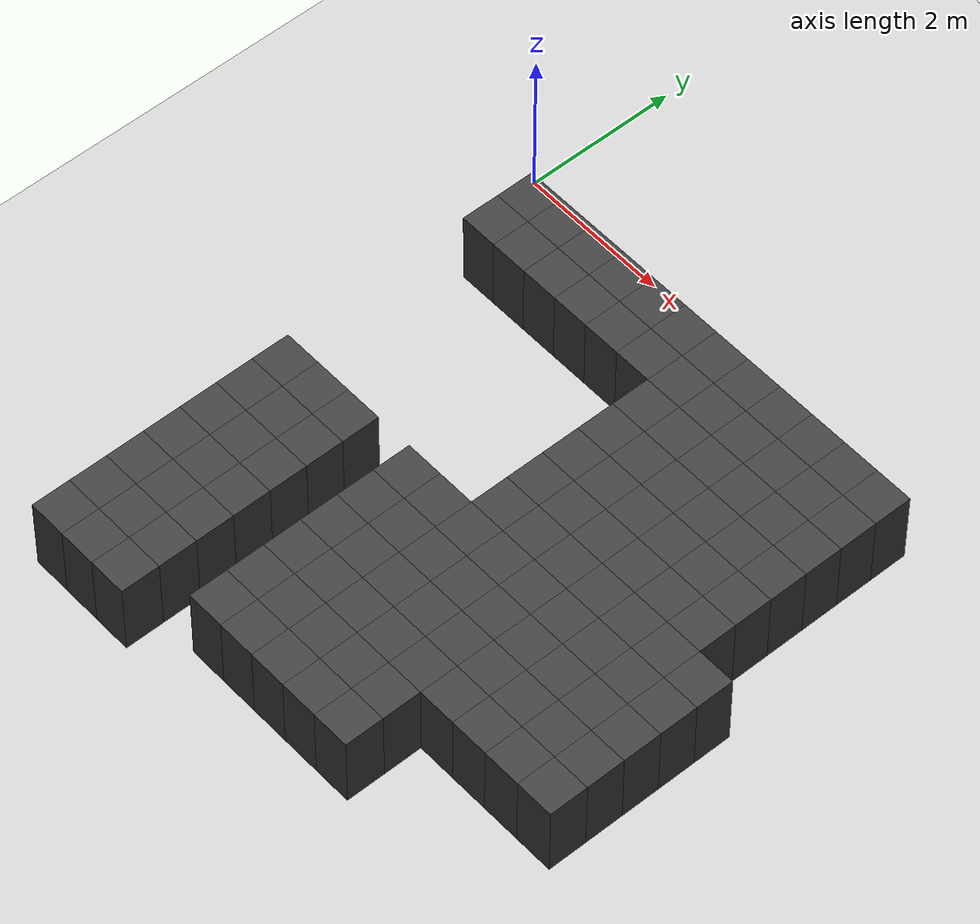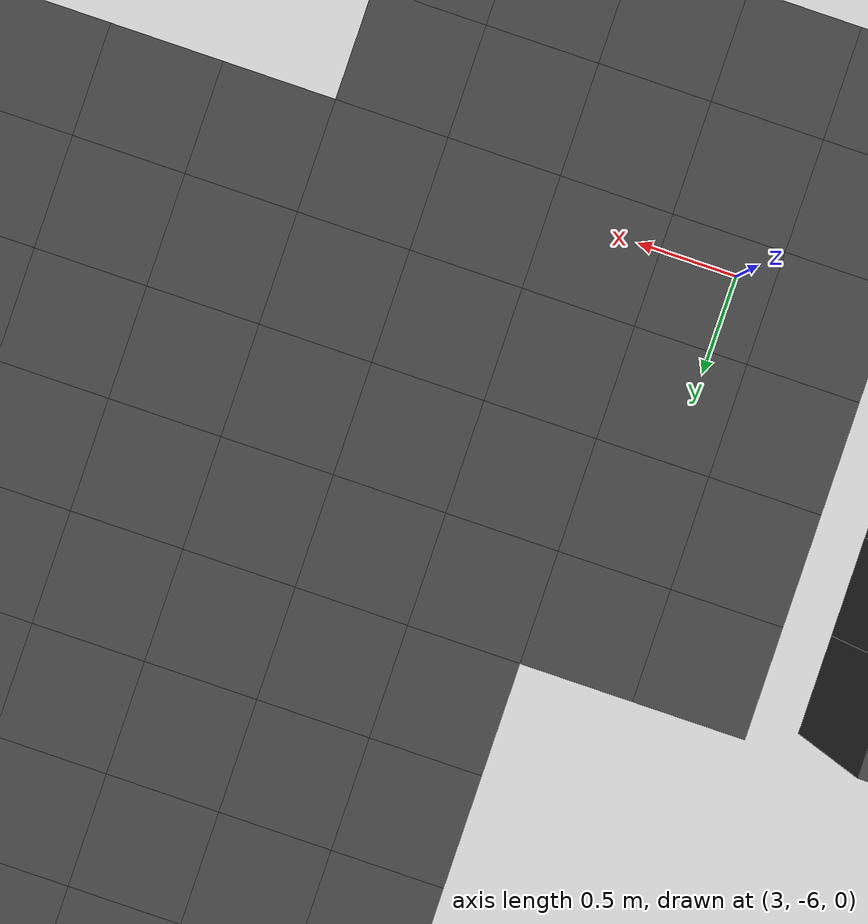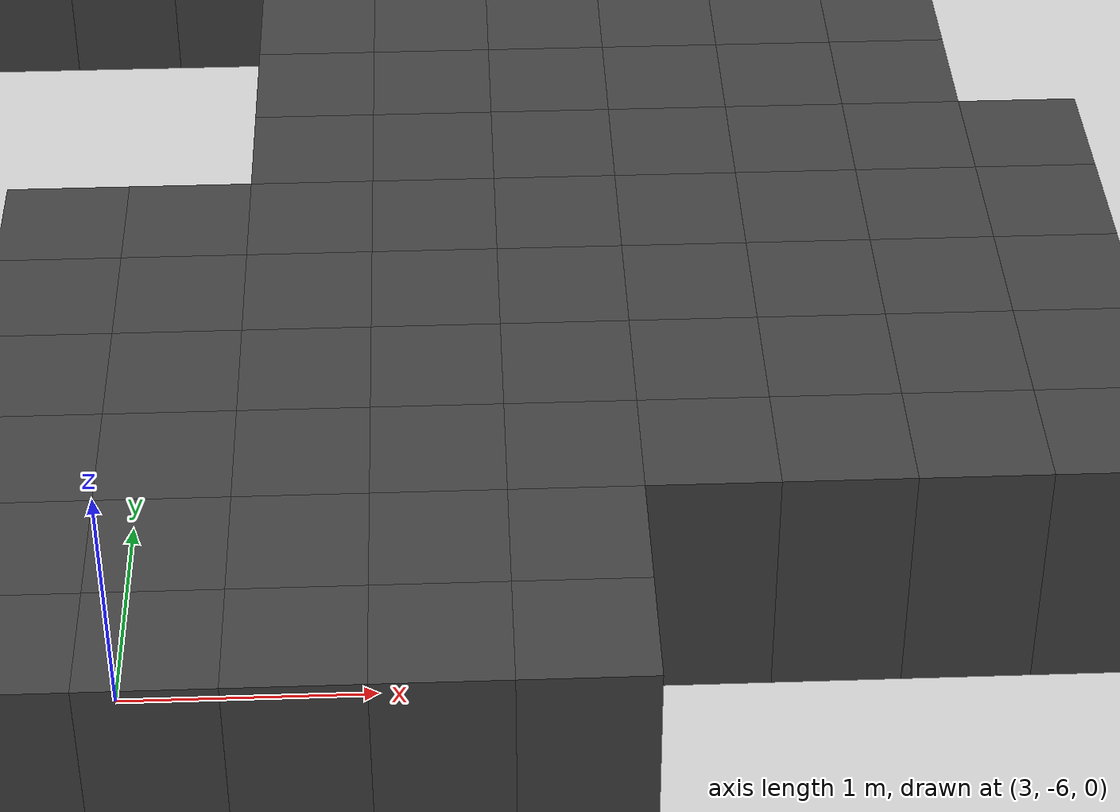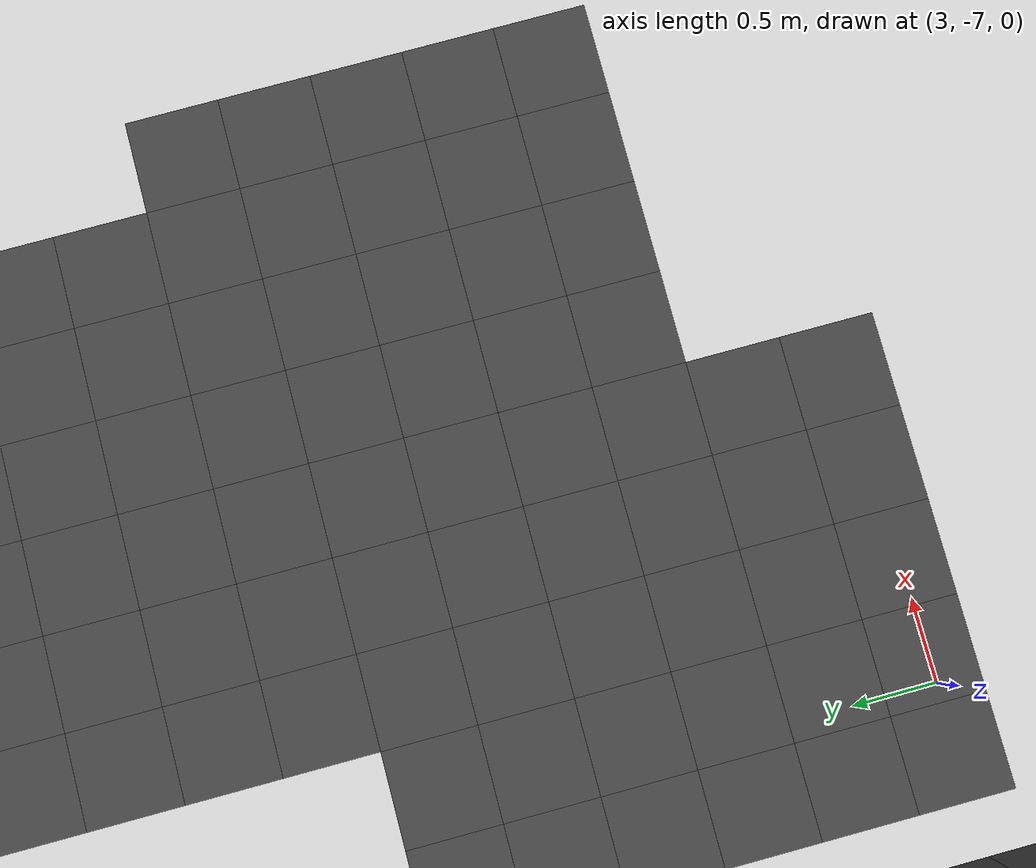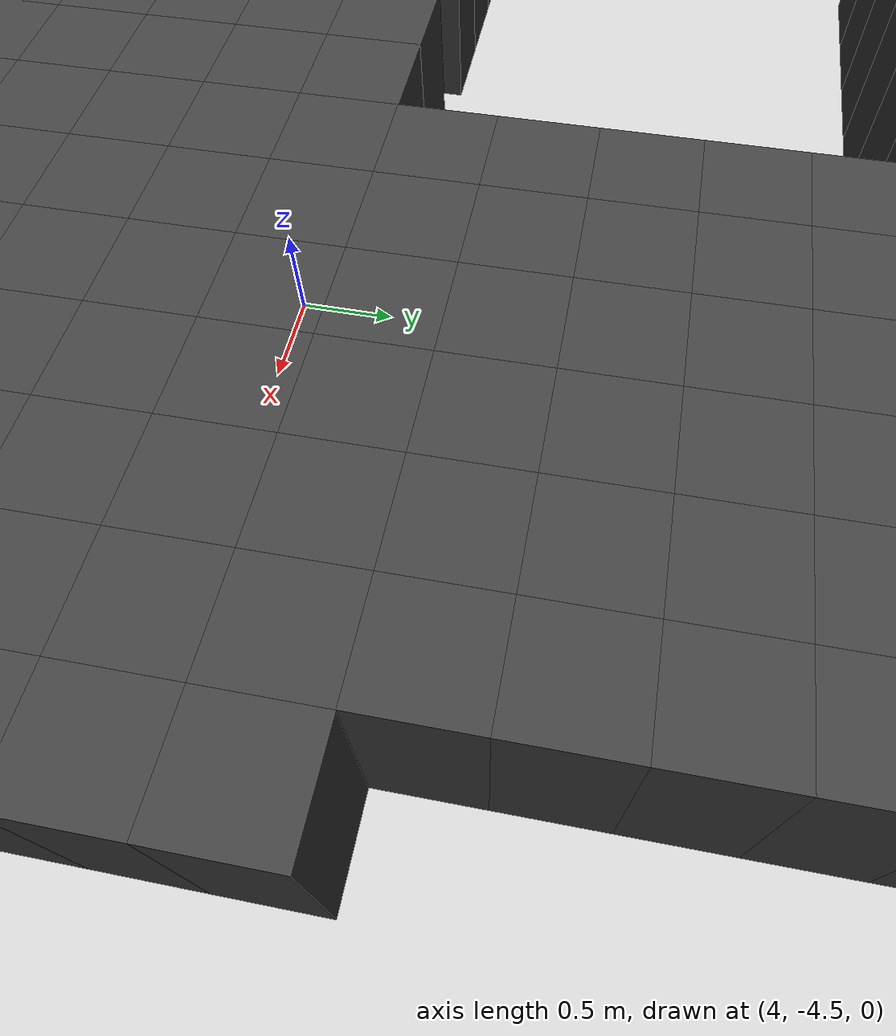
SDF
<sdf version="1.7">
 <world name="map_14510">
  <model name="ground_plane">
   <static>true</static>
   <link name="link">
    <collision name="collision">
     <geometry><plane><normal>0 0 1</normal><size>200 200</size></plane></geometry>
    </collision>
    <visual name="visual">
     <geometry><plane><normal>0 0 1</normal><size>200 200</size></plane></geometry>
     <material><ambient>0.8 0.8 0.8 1</ambient><diffuse>0.8 0.8 0.8 1</diffuse></material>
    </visual>
   </link>
  </model>
  <model name="maze_environment">
   <static>true</static>
   <link name="wall_915">
    <pose>0.750 -0.750 0.500 0 0 0</pose>
    <collision name="col"><geometry><box><size>0.5 0.5 1.0</size></box></geometry></collision>
    <visual name="vis">
     <geometry><box><size>0.5 0.5 1.0</size></box></geometry>
     <material><ambient>0.15 0.15 0.15 1</ambient><diffuse>0.25 0.25 0.25 1</diffuse></material>
    </visual>
   </link>
   <link name="wall_916">
    <pose>1.250 -0.750 0.500 0 0 0</pose>
    <collision name="col"><geometry><box><size>0.5 0.5 1.0</size></box></geometry></collision>
    <visual name="vis">
     <geometry><box><size>0.5 0.5 1.0</size></box></geometry>
     <material><ambient>0.15 0.15 0.15 1</ambient><diffuse>0.25 0.25 0.25 1</diffuse></material>
    </visual>
   </link>
   <link name="wall_917">
    <pose>1.750 -0.750 0.500 0 0 0</pose>
    <collision name="col"><geometry><box><size>0.5 0.5 1.0</size></box></geometry></collision>
    <visual name="vis">
     <geometry><box><size>0.5 0.5 1.0</size></box></geometry>
     <material><ambient>0.15 0.15 0.15 1</ambient><diffuse>0.25 0.25 0.25 1</diffuse></material>
    </visual>
   </link>
   <link name="wall_918">
    <pose>2.250 -0.750 0.500 0 0 0</pose>
    <collision name="col"><geometry><box><size>0.5 0.5 1.0</size></box></geometry></collision>
    <visual name="vis">
     <geometry><box><size>0.5 0.5 1.0</size></box></geometry>
     <material><ambient>0.15 0.15 0.15 1</ambient><diffuse>0.25 0.25 0.25 1</diffuse></material>
    </visual>
   </link>
   <link name="wall_919">
    <pose>2.750 -0.750 0.500 0 0 0</pose>
    <collision name="col"><geometry><box><size>0.5 0.5 1.0</size></box></geometry></collision>
    <visual name="vis">
     <geometry><box><size>0.5 0.5 1.0</size></box></geometry>
     <material><ambient>0.15 0.15 0.15 1</ambient><diffuse>0.25 0.25 0.25 1</diffuse></material>
    </visual>
   </link>
   <link name="wall_920">
    <pose>3.250 -0.750 0.500 0 0 0</pose>
    <collision name="col"><geometry><box><size>0.5 0.5 1.0</size></box></geometry></collision>
    <visual name="vis">
     <geometry><box><size>0.5 0.5 1.0</size></box></geometry>
     <material><ambient>0.15 0.15 0.15 1</ambient><diffuse>0.25 0.25 0.25 1</diffuse></material>
    </visual>
   </link>
   <link name="wall_921">
    <pose>3.750 -0.750 0.500 0 0 0</pose>
    <collision name="col"><geometry><box><size>0.5 0.5 1.0</size></box></geometry></collision>
    <visual name="vis">
     <geometry><box><size>0.5 0.5 1.0</size></box></geometry>
     <material><ambient>0.15 0.15 0.15 1</ambient><diffuse>0.25 0.25 0.25 1</diffuse></material>
    </visual>
   </link>
   <link name="wall_922">
    <pose>4.250 -0.750 0.500 0 0 0</pose>
    <collision name="col"><geometry><box><size>0.5 0.5 1.0</size></box></geometry></collision>
    <visual name="vis">
     <geometry><box><size>0.5 0.5 1.0</size></box></geometry>
     <material><ambient>0.15 0.15 0.15 1</ambient><diffuse>0.25 0.25 0.25 1</diffuse></material>
    </visual>
   </link>
   <link name="wall_923">
    <pose>4.750 -0.750 0.500 0 0 0</pose>
    <collision name="col"><geometry><box><size>0.5 0.5 1.0</size></box></geometry></collision>
    <visual name="vis">
     <geometry><box><size>0.5 0.5 1.0</size></box></geometry>
     <material><ambient>0.15 0.15 0.15 1</ambient><diffuse>0.25 0.25 0.25 1</diffuse></material>
    </visual>
   </link>
   <link name="wall_924">
    <pose>5.250 -0.750 0.500 0 0 0</pose>
    <collision name="col"><geometry><box><size>0.5 0.5 1.0</size></box></geometry></collision>
    <visual name="vis">
     <geometry><box><size>0.5 0.5 1.0</size></box></geometry>
     <material><ambient>0.15 0.15 0.15 1</ambient><diffuse>0.25 0.25 0.25 1</diffuse></material>
    </visual>
   </link>
   <link name="wall_925">
    <pose>5.750 -0.750 0.500 0 0 0</pose>
    <collision name="col"><geometry><box><size>0.5 0.5 1.0</size></box></geometry></collision>
    <visual name="vis">
     <geometry><box><size>0.5 0.5 1.0</size></box></geometry>
     <material><ambient>0.15 0.15 0.15 1</ambient><diffuse>0.25 0.25 0.25 1</diffuse></material>
    </visual>
   </link>
   <link name="wall_926">
    <pose>6.250 -0.750 0.500 0 0 0</pose>
    <collision name="col"><geometry><box><size>0.5 0.5 1.0</size></box></geometry></collision>
    <visual name="vis">
     <geometry><box><size>0.5 0.5 1.0</size></box></geometry>
     <material><ambient>0.15 0.15 0.15 1</ambient><diffuse>0.25 0.25 0.25 1</diffuse></material>
    </visual>
   </link>
   <link name="wall_948">
    <pose>0.750 -1.250 0.500 0 0 0</pose>
    <collision name="col"><geometry><box><size>0.5 0.5 1.0</size></box></geometry></collision>
    <visual name="vis">
     <geometry><box><size>0.5 0.5 1.0</size></box></geometry>
     <material><ambient>0.15 0.15 0.15 1</ambient><diffuse>0.25 0.25 0.25 1</diffuse></material>
    </visual>
   </link>
   <link name="wall_949">
    <pose>1.250 -1.250 0.500 0 0 0</pose>
    <collision name="col"><geometry><box><size>0.5 0.5 1.0</size></box></geometry></collision>
    <visual name="vis">
     <geometry><box><size>0.5 0.5 1.0</size></box></geometry>
     <material><ambient>0.15 0.15 0.15 1</ambient><diffuse>0.25 0.25 0.25 1</diffuse></material>
    </visual>
   </link>
   <link name="wall_950">
    <pose>1.750 -1.250 0.500 0 0 0</pose>
    <collision name="col"><geometry><box><size>0.5 0.5 1.0</size></box></geometry></collision>
    <visual name="vis">
     <geometry><box><size>0.5 0.5 1.0</size></box></geometry>
     <material><ambient>0.15 0.15 0.15 1</ambient><diffuse>0.25 0.25 0.25 1</diffuse></material>
    </visual>
   </link>
   <link name="wall_951">
    <pose>2.250 -1.250 0.500 0 0 0</pose>
    <collision name="col"><geometry><box><size>0.5 0.5 1.0</size></box></geometry></collision>
    <visual name="vis">
     <geometry><box><size>0.5 0.5 1.0</size></box></geometry>
     <material><ambient>0.15 0.15 0.15 1</ambient><diffuse>0.25 0.25 0.25 1</diffuse></material>
    </visual>
   </link>
   <link name="wall_952">
    <pose>2.750 -1.250 0.500 0 0 0</pose>
    <collision name="col"><geometry><box><size>0.5 0.5 1.0</size></box></geometry></collision>
    <visual name="vis">
     <geometry><box><size>0.5 0.5 1.0</size></box></geometry>
     <material><ambient>0.15 0.15 0.15 1</ambient><diffuse>0.25 0.25 0.25 1</diffuse></material>
    </visual>
   </link>
   <link name="wall_953">
    <pose>3.250 -1.250 0.500 0 0 0</pose>
    <collision name="col"><geometry><box><size>0.5 0.5 1.0</size></box></geometry></collision>
    <visual name="vis">
     <geometry><box><size>0.5 0.5 1.0</size></box></geometry>
     <material><ambient>0.15 0.15 0.15 1</ambient><diffuse>0.25 0.25 0.25 1</diffuse></material>
    </visual>
   </link>
   <link name="wall_954">
    <pose>3.750 -1.250 0.500 0 0 0</pose>
    <collision name="col"><geometry><box><size>0.5 0.5 1.0</size></box></geometry></collision>
    <visual name="vis">
     <geometry><box><size>0.5 0.5 1.0</size></box></geometry>
     <material><ambient>0.15 0.15 0.15 1</ambient><diffuse>0.25 0.25 0.25 1</diffuse></material>
    </visual>
   </link>
   <link name="wall_955">
    <pose>4.250 -1.250 0.500 0 0 0</pose>
    <collision name="col"><geometry><box><size>0.5 0.5 1.0</size></box></geometry></collision>
    <visual name="vis">
     <geometry><box><size>0.5 0.5 1.0</size></box></geometry>
     <material><ambient>0.15 0.15 0.15 1</ambient><diffuse>0.25 0.25 0.25 1</diffuse></material>
    </visual>
   </link>
   <link name="wall_956">
    <pose>4.750 -1.250 0.500 0 0 0</pose>
    <collision name="col"><geometry><box><size>0.5 0.5 1.0</size></box></geometry></collision>
    <visual name="vis">
     <geometry><box><size>0.5 0.5 1.0</size></box></geometry>
     <material><ambient>0.15 0.15 0.15 1</ambient><diffuse>0.25 0.25 0.25 1</diffuse></material>
    </visual>
   </link>
   <link name="wall_957">
    <pose>5.250 -1.250 0.500 0 0 0</pose>
    <collision name="col"><geometry><box><size>0.5 0.5 1.0</size></box></geometry></collision>
    <visual name="vis">
     <geometry><box><size>0.5 0.5 1.0</size></box></geometry>
     <material><ambient>0.15 0.15 0.15 1</ambient><diffuse>0.25 0.25 0.25 1</diffuse></material>
    </visual>
   </link>
   <link name="wall_958">
    <pose>5.750 -1.250 0.500 0 0 0</pose>
    <collision name="col"><geometry><box><size>0.5 0.5 1.0</size></box></geometry></collision>
    <visual name="vis">
     <geometry><box><size>0.5 0.5 1.0</size></box></geometry>
     <material><ambient>0.15 0.15 0.15 1</ambient><diffuse>0.25 0.25 0.25 1</diffuse></material>
    </visual>
   </link>
   <link name="wall_959">
    <pose>6.250 -1.250 0.500 0 0 0</pose>
    <collision name="col"><geometry><box><size>0.5 0.5 1.0</size></box></geometry></collision>
    <visual name="vis">
     <geometry><box><size>0.5 0.5 1.0</size></box></geometry>
     <material><ambient>0.15 0.15 0.15 1</ambient><diffuse>0.25 0.25 0.25 1</diffuse></material>
    </visual>
   </link>
   <link name="wall_981">
    <pose>3.750 -1.750 0.500 0 0 0</pose>
    <collision name="col"><geometry><box><size>0.5 0.5 1.0</size></box></geometry></collision>
    <visual name="vis">
     <geometry><box><size>0.5 0.5 1.0</size></box></geometry>
     <material><ambient>0.15 0.15 0.15 1</ambient><diffuse>0.25 0.25 0.25 1</diffuse></material>
    </visual>
   </link>
   <link name="wall_982">
    <pose>4.250 -1.750 0.500 0 0 0</pose>
    <collision name="col"><geometry><box><size>0.5 0.5 1.0</size></box></geometry></collision>
    <visual name="vis">
     <geometry><box><size>0.5 0.5 1.0</size></box></geometry>
     <material><ambient>0.15 0.15 0.15 1</ambient><diffuse>0.25 0.25 0.25 1</diffuse></material>
    </visual>
   </link>
   <link name="wall_983">
    <pose>4.750 -1.750 0.500 0 0 0</pose>
    <collision name="col"><geometry><box><size>0.5 0.5 1.0</size></box></geometry></collision>
    <visual name="vis">
     <geometry><box><size>0.5 0.5 1.0</size></box></geometry>
     <material><ambient>0.15 0.15 0.15 1</ambient><diffuse>0.25 0.25 0.25 1</diffuse></material>
    </visual>
   </link>
   <link name="wall_984">
    <pose>5.250 -1.750 0.500 0 0 0</pose>
    <collision name="col"><geometry><box><size>0.5 0.5 1.0</size></box></geometry></collision>
    <visual name="vis">
     <geometry><box><size>0.5 0.5 1.0</size></box></geometry>
     <material><ambient>0.15 0.15 0.15 1</ambient><diffuse>0.25 0.25 0.25 1</diffuse></material>
    </visual>
   </link>
   <link name="wall_985">
    <pose>5.750 -1.750 0.500 0 0 0</pose>
    <collision name="col"><geometry><box><size>0.5 0.5 1.0</size></box></geometry></collision>
    <visual name="vis">
     <geometry><box><size>0.5 0.5 1.0</size></box></geometry>
     <material><ambient>0.15 0.15 0.15 1</ambient><diffuse>0.25 0.25 0.25 1</diffuse></material>
    </visual>
   </link>
   <link name="wall_986">
    <pose>6.250 -1.750 0.500 0 0 0</pose>
    <collision name="col"><geometry><box><size>0.5 0.5 1.0</size></box></geometry></collision>
    <visual name="vis">
     <geometry><box><size>0.5 0.5 1.0</size></box></geometry>
     <material><ambient>0.15 0.15 0.15 1</ambient><diffuse>0.25 0.25 0.25 1</diffuse></material>
    </visual>
   </link>
   <link name="wall_1008">
    <pose>3.750 -2.250 0.500 0 0 0</pose>
    <collision name="col"><geometry><box><size>0.5 0.5 1.0</size></box></geometry></collision>
    <visual name="vis">
     <geometry><box><size>0.5 0.5 1.0</size></box></geometry>
     <material><ambient>0.15 0.15 0.15 1</ambient><diffuse>0.25 0.25 0.25 1</diffuse></material>
    </visual>
   </link>
   <link name="wall_1009">
    <pose>4.250 -2.250 0.500 0 0 0</pose>
    <collision name="col"><geometry><box><size>0.5 0.5 1.0</size></box></geometry></collision>
    <visual name="vis">
     <geometry><box><size>0.5 0.5 1.0</size></box></geometry>
     <material><ambient>0.15 0.15 0.15 1</ambient><diffuse>0.25 0.25 0.25 1</diffuse></material>
    </visual>
   </link>
   <link name="wall_1010">
    <pose>4.750 -2.250 0.500 0 0 0</pose>
    <collision name="col"><geometry><box><size>0.5 0.5 1.0</size></box></geometry></collision>
    <visual name="vis">
     <geometry><box><size>0.5 0.5 1.0</size></box></geometry>
     <material><ambient>0.15 0.15 0.15 1</ambient><diffuse>0.25 0.25 0.25 1</diffuse></material>
    </visual>
   </link>
   <link name="wall_1011">
    <pose>5.250 -2.250 0.500 0 0 0</pose>
    <collision name="col"><geometry><box><size>0.5 0.5 1.0</size></box></geometry></collision>
    <visual name="vis">
     <geometry><box><size>0.5 0.5 1.0</size></box></geometry>
     <material><ambient>0.15 0.15 0.15 1</ambient><diffuse>0.25 0.25 0.25 1</diffuse></material>
    </visual>
   </link>
   <link name="wall_1012">
    <pose>5.750 -2.250 0.500 0 0 0</pose>
    <collision name="col"><geometry><box><size>0.5 0.5 1.0</size></box></geometry></collision>
    <visual name="vis">
     <geometry><box><size>0.5 0.5 1.0</size></box></geometry>
     <material><ambient>0.15 0.15 0.15 1</ambient><diffuse>0.25 0.25 0.25 1</diffuse></material>
    </visual>
   </link>
   <link name="wall_1013">
    <pose>6.250 -2.250 0.500 0 0 0</pose>
    <collision name="col"><geometry><box><size>0.5 0.5 1.0</size></box></geometry></collision>
    <visual name="vis">
     <geometry><box><size>0.5 0.5 1.0</size></box></geometry>
     <material><ambient>0.15 0.15 0.15 1</ambient><diffuse>0.25 0.25 0.25 1</diffuse></material>
    </visual>
   </link>
   <link name="wall_1036">
    <pose>3.750 -2.750 0.500 0 0 0</pose>
    <collision name="col"><geometry><box><size>0.5 0.5 1.0</size></box></geometry></collision>
    <visual name="vis">
     <geometry><box><size>0.5 0.5 1.0</size></box></geometry>
     <material><ambient>0.15 0.15 0.15 1</ambient><diffuse>0.25 0.25 0.25 1</diffuse></material>
    </visual>
   </link>
   <link name="wall_1037">
    <pose>4.250 -2.750 0.500 0 0 0</pose>
    <collision name="col"><geometry><box><size>0.5 0.5 1.0</size></box></geometry></collision>
    <visual name="vis">
     <geometry><box><size>0.5 0.5 1.0</size></box></geometry>
     <material><ambient>0.15 0.15 0.15 1</ambient><diffuse>0.25 0.25 0.25 1</diffuse></material>
    </visual>
   </link>
   <link name="wall_1038">
    <pose>4.750 -2.750 0.500 0 0 0</pose>
    <collision name="col"><geometry><box><size>0.5 0.5 1.0</size></box></geometry></collision>
    <visual name="vis">
     <geometry><box><size>0.5 0.5 1.0</size></box></geometry>
     <material><ambient>0.15 0.15 0.15 1</ambient><diffuse>0.25 0.25 0.25 1</diffuse></material>
    </visual>
   </link>
   <link name="wall_1039">
    <pose>5.250 -2.750 0.500 0 0 0</pose>
    <collision name="col"><geometry><box><size>0.5 0.5 1.0</size></box></geometry></collision>
    <visual name="vis">
     <geometry><box><size>0.5 0.5 1.0</size></box></geometry>
     <material><ambient>0.15 0.15 0.15 1</ambient><diffuse>0.25 0.25 0.25 1</diffuse></material>
    </visual>
   </link>
   <link name="wall_1040">
    <pose>5.750 -2.750 0.500 0 0 0</pose>
    <collision name="col"><geometry><box><size>0.5 0.5 1.0</size></box></geometry></collision>
    <visual name="vis">
     <geometry><box><size>0.5 0.5 1.0</size></box></geometry>
     <material><ambient>0.15 0.15 0.15 1</ambient><diffuse>0.25 0.25 0.25 1</diffuse></material>
    </visual>
   </link>
   <link name="wall_1041">
    <pose>6.250 -2.750 0.500 0 0 0</pose>
    <collision name="col"><geometry><box><size>0.5 0.5 1.0</size></box></geometry></collision>
    <visual name="vis">
     <geometry><box><size>0.5 0.5 1.0</size></box></geometry>
     <material><ambient>0.15 0.15 0.15 1</ambient><diffuse>0.25 0.25 0.25 1</diffuse></material>
    </visual>
   </link>
   <link name="wall_1072">
    <pose>3.750 -3.250 0.500 0 0 0</pose>
    <collision name="col"><geometry><box><size>0.5 0.5 1.0</size></box></geometry></collision>
    <visual name="vis">
     <geometry><box><size>0.5 0.5 1.0</size></box></geometry>
     <material><ambient>0.15 0.15 0.15 1</ambient><diffuse>0.25 0.25 0.25 1</diffuse></material>
    </visual>
   </link>
   <link name="wall_1073">
    <pose>4.250 -3.250 0.500 0 0 0</pose>
    <collision name="col"><geometry><box><size>0.5 0.5 1.0</size></box></geometry></collision>
    <visual name="vis">
     <geometry><box><size>0.5 0.5 1.0</size></box></geometry>
     <material><ambient>0.15 0.15 0.15 1</ambient><diffuse>0.25 0.25 0.25 1</diffuse></material>
    </visual>
   </link>
   <link name="wall_1074">
    <pose>4.750 -3.250 0.500 0 0 0</pose>
    <collision name="col"><geometry><box><size>0.5 0.5 1.0</size></box></geometry></collision>
    <visual name="vis">
     <geometry><box><size>0.5 0.5 1.0</size></box></geometry>
     <material><ambient>0.15 0.15 0.15 1</ambient><diffuse>0.25 0.25 0.25 1</diffuse></material>
    </visual>
   </link>
   <link name="wall_1075">
    <pose>5.250 -3.250 0.500 0 0 0</pose>
    <collision name="col"><geometry><box><size>0.5 0.5 1.0</size></box></geometry></collision>
    <visual name="vis">
     <geometry><box><size>0.5 0.5 1.0</size></box></geometry>
     <material><ambient>0.15 0.15 0.15 1</ambient><diffuse>0.25 0.25 0.25 1</diffuse></material>
    </visual>
   </link>
   <link name="wall_1076">
    <pose>5.750 -3.250 0.500 0 0 0</pose>
    <collision name="col"><geometry><box><size>0.5 0.5 1.0</size></box></geometry></collision>
    <visual name="vis">
     <geometry><box><size>0.5 0.5 1.0</size></box></geometry>
     <material><ambient>0.15 0.15 0.15 1</ambient><diffuse>0.25 0.25 0.25 1</diffuse></material>
    </visual>
   </link>
   <link name="wall_1077">
    <pose>6.250 -3.250 0.500 0 0 0</pose>
    <collision name="col"><geometry><box><size>0.5 0.5 1.0</size></box></geometry></collision>
    <visual name="vis">
     <geometry><box><size>0.5 0.5 1.0</size></box></geometry>
     <material><ambient>0.15 0.15 0.15 1</ambient><diffuse>0.25 0.25 0.25 1</diffuse></material>
    </visual>
   </link>
   <link name="wall_1108">
    <pose>3.750 -3.750 0.500 0 0 0</pose>
    <collision name="col"><geometry><box><size>0.5 0.5 1.0</size></box></geometry></collision>
    <visual name="vis">
     <geometry><box><size>0.5 0.5 1.0</size></box></geometry>
     <material><ambient>0.15 0.15 0.15 1</ambient><diffuse>0.25 0.25 0.25 1</diffuse></material>
    </visual>
   </link>
   <link name="wall_1109">
    <pose>4.250 -3.750 0.500 0 0 0</pose>
    <collision name="col"><geometry><box><size>0.5 0.5 1.0</size></box></geometry></collision>
    <visual name="vis">
     <geometry><box><size>0.5 0.5 1.0</size></box></geometry>
     <material><ambient>0.15 0.15 0.15 1</ambient><diffuse>0.25 0.25 0.25 1</diffuse></material>
    </visual>
   </link>
   <link name="wall_1110">
    <pose>4.750 -3.750 0.500 0 0 0</pose>
    <collision name="col"><geometry><box><size>0.5 0.5 1.0</size></box></geometry></collision>
    <visual name="vis">
     <geometry><box><size>0.5 0.5 1.0</size></box></geometry>
     <material><ambient>0.15 0.15 0.15 1</ambient><diffuse>0.25 0.25 0.25 1</diffuse></material>
    </visual>
   </link>
   <link name="wall_1111">
    <pose>5.250 -3.750 0.500 0 0 0</pose>
    <collision name="col"><geometry><box><size>0.5 0.5 1.0</size></box></geometry></collision>
    <visual name="vis">
     <geometry><box><size>0.5 0.5 1.0</size></box></geometry>
     <material><ambient>0.15 0.15 0.15 1</ambient><diffuse>0.25 0.25 0.25 1</diffuse></material>
    </visual>
   </link>
   <link name="wall_1112">
    <pose>5.750 -3.750 0.500 0 0 0</pose>
    <collision name="col"><geometry><box><size>0.5 0.5 1.0</size></box></geometry></collision>
    <visual name="vis">
     <geometry><box><size>0.5 0.5 1.0</size></box></geometry>
     <material><ambient>0.15 0.15 0.15 1</ambient><diffuse>0.25 0.25 0.25 1</diffuse></material>
    </visual>
   </link>
   <link name="wall_1113">
    <pose>6.250 -3.750 0.500 0 0 0</pose>
    <collision name="col"><geometry><box><size>0.5 0.5 1.0</size></box></geometry></collision>
    <visual name="vis">
     <geometry><box><size>0.5 0.5 1.0</size></box></geometry>
     <material><ambient>0.15 0.15 0.15 1</ambient><diffuse>0.25 0.25 0.25 1</diffuse></material>
    </visual>
   </link>
   <link name="wall_1114">
    <pose>6.750 -3.750 0.500 0 0 0</pose>
    <collision name="col"><geometry><box><size>0.5 0.5 1.0</size></box></geometry></collision>
    <visual name="vis">
     <geometry><box><size>0.5 0.5 1.0</size></box></geometry>
     <material><ambient>0.15 0.15 0.15 1</ambient><diffuse>0.25 0.25 0.25 1</diffuse></material>
    </visual>
   </link>
   <link name="wall_1144">
    <pose>0.750 -4.250 0.500 0 0 0</pose>
    <collision name="col"><geometry><box><size>0.5 0.5 1.0</size></box></geometry></collision>
    <visual name="vis">
     <geometry><box><size>0.5 0.5 1.0</size></box></geometry>
     <material><ambient>0.15 0.15 0.15 1</ambient><diffuse>0.25 0.25 0.25 1</diffuse></material>
    </visual>
   </link>
   <link name="wall_1145">
    <pose>1.250 -4.250 0.500 0 0 0</pose>
    <collision name="col"><geometry><box><size>0.5 0.5 1.0</size></box></geometry></collision>
    <visual name="vis">
     <geometry><box><size>0.5 0.5 1.0</size></box></geometry>
     <material><ambient>0.15 0.15 0.15 1</ambient><diffuse>0.25 0.25 0.25 1</diffuse></material>
    </visual>
   </link>
   <link name="wall_1146">
    <pose>1.750 -4.250 0.500 0 0 0</pose>
    <collision name="col"><geometry><box><size>0.5 0.5 1.0</size></box></geometry></collision>
    <visual name="vis">
     <geometry><box><size>0.5 0.5 1.0</size></box></geometry>
     <material><ambient>0.15 0.15 0.15 1</ambient><diffuse>0.25 0.25 0.25 1</diffuse></material>
    </visual>
   </link>
   <link name="wall_1147">
    <pose>2.750 -4.250 0.500 0 0 0</pose>
    <collision name="col"><geometry><box><size>0.5 0.5 1.0</size></box></geometry></collision>
    <visual name="vis">
     <geometry><box><size>0.5 0.5 1.0</size></box></geometry>
     <material><ambient>0.15 0.15 0.15 1</ambient><diffuse>0.25 0.25 0.25 1</diffuse></material>
    </visual>
   </link>
   <link name="wall_1148">
    <pose>3.250 -4.250 0.500 0 0 0</pose>
    <collision name="col"><geometry><box><size>0.5 0.5 1.0</size></box></geometry></collision>
    <visual name="vis">
     <geometry><box><size>0.5 0.5 1.0</size></box></geometry>
     <material><ambient>0.15 0.15 0.15 1</ambient><diffuse>0.25 0.25 0.25 1</diffuse></material>
    </visual>
   </link>
   <link name="wall_1149">
    <pose>3.750 -4.250 0.500 0 0 0</pose>
    <collision name="col"><geometry><box><size>0.5 0.5 1.0</size></box></geometry></collision>
    <visual name="vis">
     <geometry><box><size>0.5 0.5 1.0</size></box></geometry>
     <material><ambient>0.15 0.15 0.15 1</ambient><diffuse>0.25 0.25 0.25 1</diffuse></material>
    </visual>
   </link>
   <link name="wall_1150">
    <pose>4.250 -4.250 0.500 0 0 0</pose>
    <collision name="col"><geometry><box><size>0.5 0.5 1.0</size></box></geometry></collision>
    <visual name="vis">
     <geometry><box><size>0.5 0.5 1.0</size></box></geometry>
     <material><ambient>0.15 0.15 0.15 1</ambient><diffuse>0.25 0.25 0.25 1</diffuse></material>
    </visual>
   </link>
   <link name="wall_1151">
    <pose>4.750 -4.250 0.500 0 0 0</pose>
    <collision name="col"><geometry><box><size>0.5 0.5 1.0</size></box></geometry></collision>
    <visual name="vis">
     <geometry><box><size>0.5 0.5 1.0</size></box></geometry>
     <material><ambient>0.15 0.15 0.15 1</ambient><diffuse>0.25 0.25 0.25 1</diffuse></material>
    </visual>
   </link>
   <link name="wall_1152">
    <pose>5.250 -4.250 0.500 0 0 0</pose>
    <collision name="col"><geometry><box><size>0.5 0.5 1.0</size></box></geometry></collision>
    <visual name="vis">
     <geometry><box><size>0.5 0.5 1.0</size></box></geometry>
     <material><ambient>0.15 0.15 0.15 1</ambient><diffuse>0.25 0.25 0.25 1</diffuse></material>
    </visual>
   </link>
   <link name="wall_1153">
    <pose>5.750 -4.250 0.500 0 0 0</pose>
    <collision name="col"><geometry><box><size>0.5 0.5 1.0</size></box></geometry></collision>
    <visual name="vis">
     <geometry><box><size>0.5 0.5 1.0</size></box></geometry>
     <material><ambient>0.15 0.15 0.15 1</ambient><diffuse>0.25 0.25 0.25 1</diffuse></material>
    </visual>
   </link>
   <link name="wall_1154">
    <pose>6.250 -4.250 0.500 0 0 0</pose>
    <collision name="col"><geometry><box><size>0.5 0.5 1.0</size></box></geometry></collision>
    <visual name="vis">
     <geometry><box><size>0.5 0.5 1.0</size></box></geometry>
     <material><ambient>0.15 0.15 0.15 1</ambient><diffuse>0.25 0.25 0.25 1</diffuse></material>
    </visual>
   </link>
   <link name="wall_1155">
    <pose>6.750 -4.250 0.500 0 0 0</pose>
    <collision name="col"><geometry><box><size>0.5 0.5 1.0</size></box></geometry></collision>
    <visual name="vis">
     <geometry><box><size>0.5 0.5 1.0</size></box></geometry>
     <material><ambient>0.15 0.15 0.15 1</ambient><diffuse>0.25 0.25 0.25 1</diffuse></material>
    </visual>
   </link>
   <link name="wall_1192">
    <pose>0.750 -4.750 0.500 0 0 0</pose>
    <collision name="col"><geometry><box><size>0.5 0.5 1.0</size></box></geometry></collision>
    <visual name="vis">
     <geometry><box><size>0.5 0.5 1.0</size></box></geometry>
     <material><ambient>0.15 0.15 0.15 1</ambient><diffuse>0.25 0.25 0.25 1</diffuse></material>
    </visual>
   </link>
   <link name="wall_1193">
    <pose>1.250 -4.750 0.500 0 0 0</pose>
    <collision name="col"><geometry><box><size>0.5 0.5 1.0</size></box></geometry></collision>
    <visual name="vis">
     <geometry><box><size>0.5 0.5 1.0</size></box></geometry>
     <material><ambient>0.15 0.15 0.15 1</ambient><diffuse>0.25 0.25 0.25 1</diffuse></material>
    </visual>
   </link>
   <link name="wall_1194">
    <pose>1.750 -4.750 0.500 0 0 0</pose>
    <collision name="col"><geometry><box><size>0.5 0.5 1.0</size></box></geometry></collision>
    <visual name="vis">
     <geometry><box><size>0.5 0.5 1.0</size></box></geometry>
     <material><ambient>0.15 0.15 0.15 1</ambient><diffuse>0.25 0.25 0.25 1</diffuse></material>
    </visual>
   </link>
   <link name="wall_1195">
    <pose>2.750 -4.750 0.500 0 0 0</pose>
    <collision name="col"><geometry><box><size>0.5 0.5 1.0</size></box></geometry></collision>
    <visual name="vis">
     <geometry><box><size>0.5 0.5 1.0</size></box></geometry>
     <material><ambient>0.15 0.15 0.15 1</ambient><diffuse>0.25 0.25 0.25 1</diffuse></material>
    </visual>
   </link>
   <link name="wall_1196">
    <pose>3.250 -4.750 0.500 0 0 0</pose>
    <collision name="col"><geometry><box><size>0.5 0.5 1.0</size></box></geometry></collision>
    <visual name="vis">
     <geometry><box><size>0.5 0.5 1.0</size></box></geometry>
     <material><ambient>0.15 0.15 0.15 1</ambient><diffuse>0.25 0.25 0.25 1</diffuse></material>
    </visual>
   </link>
   <link name="wall_1197">
    <pose>3.750 -4.750 0.500 0 0 0</pose>
    <collision name="col"><geometry><box><size>0.5 0.5 1.0</size></box></geometry></collision>
    <visual name="vis">
     <geometry><box><size>0.5 0.5 1.0</size></box></geometry>
     <material><ambient>0.15 0.15 0.15 1</ambient><diffuse>0.25 0.25 0.25 1</diffuse></material>
    </visual>
   </link>
   <link name="wall_1198">
    <pose>4.250 -4.750 0.500 0 0 0</pose>
    <collision name="col"><geometry><box><size>0.5 0.5 1.0</size></box></geometry></collision>
    <visual name="vis">
     <geometry><box><size>0.5 0.5 1.0</size></box></geometry>
     <material><ambient>0.15 0.15 0.15 1</ambient><diffuse>0.25 0.25 0.25 1</diffuse></material>
    </visual>
   </link>
   <link name="wall_1199">
    <pose>4.750 -4.750 0.500 0 0 0</pose>
    <collision name="col"><geometry><box><size>0.5 0.5 1.0</size></box></geometry></collision>
    <visual name="vis">
     <geometry><box><size>0.5 0.5 1.0</size></box></geometry>
     <material><ambient>0.15 0.15 0.15 1</ambient><diffuse>0.25 0.25 0.25 1</diffuse></material>
    </visual>
   </link>
   <link name="wall_1200">
    <pose>5.250 -4.750 0.500 0 0 0</pose>
    <collision name="col"><geometry><box><size>0.5 0.5 1.0</size></box></geometry></collision>
    <visual name="vis">
     <geometry><box><size>0.5 0.5 1.0</size></box></geometry>
     <material><ambient>0.15 0.15 0.15 1</ambient><diffuse>0.25 0.25 0.25 1</diffuse></material>
    </visual>
   </link>
   <link name="wall_1201">
    <pose>5.750 -4.750 0.500 0 0 0</pose>
    <collision name="col"><geometry><box><size>0.5 0.5 1.0</size></box></geometry></collision>
    <visual name="vis">
     <geometry><box><size>0.5 0.5 1.0</size></box></geometry>
     <material><ambient>0.15 0.15 0.15 1</ambient><diffuse>0.25 0.25 0.25 1</diffuse></material>
    </visual>
   </link>
   <link name="wall_1202">
    <pose>6.250 -4.750 0.500 0 0 0</pose>
    <collision name="col"><geometry><box><size>0.5 0.5 1.0</size></box></geometry></collision>
    <visual name="vis">
     <geometry><box><size>0.5 0.5 1.0</size></box></geometry>
     <material><ambient>0.15 0.15 0.15 1</ambient><diffuse>0.25 0.25 0.25 1</diffuse></material>
    </visual>
   </link>
   <link name="wall_1203">
    <pose>6.750 -4.750 0.500 0 0 0</pose>
    <collision name="col"><geometry><box><size>0.5 0.5 1.0</size></box></geometry></collision>
    <visual name="vis">
     <geometry><box><size>0.5 0.5 1.0</size></box></geometry>
     <material><ambient>0.15 0.15 0.15 1</ambient><diffuse>0.25 0.25 0.25 1</diffuse></material>
    </visual>
   </link>
   <link name="wall_1240">
    <pose>0.750 -5.250 0.500 0 0 0</pose>
    <collision name="col"><geometry><box><size>0.5 0.5 1.0</size></box></geometry></collision>
    <visual name="vis">
     <geometry><box><size>0.5 0.5 1.0</size></box></geometry>
     <material><ambient>0.15 0.15 0.15 1</ambient><diffuse>0.25 0.25 0.25 1</diffuse></material>
    </visual>
   </link>
   <link name="wall_1241">
    <pose>1.250 -5.250 0.500 0 0 0</pose>
    <collision name="col"><geometry><box><size>0.5 0.5 1.0</size></box></geometry></collision>
    <visual name="vis">
     <geometry><box><size>0.5 0.5 1.0</size></box></geometry>
     <material><ambient>0.15 0.15 0.15 1</ambient><diffuse>0.25 0.25 0.25 1</diffuse></material>
    </visual>
   </link>
   <link name="wall_1242">
    <pose>1.750 -5.250 0.500 0 0 0</pose>
    <collision name="col"><geometry><box><size>0.5 0.5 1.0</size></box></geometry></collision>
    <visual name="vis">
     <geometry><box><size>0.5 0.5 1.0</size></box></geometry>
     <material><ambient>0.15 0.15 0.15 1</ambient><diffuse>0.25 0.25 0.25 1</diffuse></material>
    </visual>
   </link>
   <link name="wall_1243">
    <pose>2.750 -5.250 0.500 0 0 0</pose>
    <collision name="col"><geometry><box><size>0.5 0.5 1.0</size></box></geometry></collision>
    <visual name="vis">
     <geometry><box><size>0.5 0.5 1.0</size></box></geometry>
     <material><ambient>0.15 0.15 0.15 1</ambient><diffuse>0.25 0.25 0.25 1</diffuse></material>
    </visual>
   </link>
   <link name="wall_1244">
    <pose>3.250 -5.250 0.500 0 0 0</pose>
    <collision name="col"><geometry><box><size>0.5 0.5 1.0</size></box></geometry></collision>
    <visual name="vis">
     <geometry><box><size>0.5 0.5 1.0</size></box></geometry>
     <material><ambient>0.15 0.15 0.15 1</ambient><diffuse>0.25 0.25 0.25 1</diffuse></material>
    </visual>
   </link>
   <link name="wall_1245">
    <pose>3.750 -5.250 0.500 0 0 0</pose>
    <collision name="col"><geometry><box><size>0.5 0.5 1.0</size></box></geometry></collision>
    <visual name="vis">
     <geometry><box><size>0.5 0.5 1.0</size></box></geometry>
     <material><ambient>0.15 0.15 0.15 1</ambient><diffuse>0.25 0.25 0.25 1</diffuse></material>
    </visual>
   </link>
   <link name="wall_1246">
    <pose>4.250 -5.250 0.500 0 0 0</pose>
    <collision name="col"><geometry><box><size>0.5 0.5 1.0</size></box></geometry></collision>
    <visual name="vis">
     <geometry><box><size>0.5 0.5 1.0</size></box></geometry>
     <material><ambient>0.15 0.15 0.15 1</ambient><diffuse>0.25 0.25 0.25 1</diffuse></material>
    </visual>
   </link>
   <link name="wall_1247">
    <pose>4.750 -5.250 0.500 0 0 0</pose>
    <collision name="col"><geometry><box><size>0.5 0.5 1.0</size></box></geometry></collision>
    <visual name="vis">
     <geometry><box><size>0.5 0.5 1.0</size></box></geometry>
     <material><ambient>0.15 0.15 0.15 1</ambient><diffuse>0.25 0.25 0.25 1</diffuse></material>
    </visual>
   </link>
   <link name="wall_1248">
    <pose>5.250 -5.250 0.500 0 0 0</pose>
    <collision name="col"><geometry><box><size>0.5 0.5 1.0</size></box></geometry></collision>
    <visual name="vis">
     <geometry><box><size>0.5 0.5 1.0</size></box></geometry>
     <material><ambient>0.15 0.15 0.15 1</ambient><diffuse>0.25 0.25 0.25 1</diffuse></material>
    </visual>
   </link>
   <link name="wall_1249">
    <pose>5.750 -5.250 0.500 0 0 0</pose>
    <collision name="col"><geometry><box><size>0.5 0.5 1.0</size></box></geometry></collision>
    <visual name="vis">
     <geometry><box><size>0.5 0.5 1.0</size></box></geometry>
     <material><ambient>0.15 0.15 0.15 1</ambient><diffuse>0.25 0.25 0.25 1</diffuse></material>
    </visual>
   </link>
   <link name="wall_1250">
    <pose>6.250 -5.250 0.500 0 0 0</pose>
    <collision name="col"><geometry><box><size>0.5 0.5 1.0</size></box></geometry></collision>
    <visual name="vis">
     <geometry><box><size>0.5 0.5 1.0</size></box></geometry>
     <material><ambient>0.15 0.15 0.15 1</ambient><diffuse>0.25 0.25 0.25 1</diffuse></material>
    </visual>
   </link>
   <link name="wall_1251">
    <pose>6.750 -5.250 0.500 0 0 0</pose>
    <collision name="col"><geometry><box><size>0.5 0.5 1.0</size></box></geometry></collision>
    <visual name="vis">
     <geometry><box><size>0.5 0.5 1.0</size></box></geometry>
     <material><ambient>0.15 0.15 0.15 1</ambient><diffuse>0.25 0.25 0.25 1</diffuse></material>
    </visual>
   </link>
   <link name="wall_1281">
    <pose>0.750 -5.750 0.500 0 0 0</pose>
    <collision name="col"><geometry><box><size>0.5 0.5 1.0</size></box></geometry></collision>
    <visual name="vis">
     <geometry><box><size>0.5 0.5 1.0</size></box></geometry>
     <material><ambient>0.15 0.15 0.15 1</ambient><diffuse>0.25 0.25 0.25 1</diffuse></material>
    </visual>
   </link>
   <link name="wall_1282">
    <pose>1.250 -5.750 0.500 0 0 0</pose>
    <collision name="col"><geometry><box><size>0.5 0.5 1.0</size></box></geometry></collision>
    <visual name="vis">
     <geometry><box><size>0.5 0.5 1.0</size></box></geometry>
     <material><ambient>0.15 0.15 0.15 1</ambient><diffuse>0.25 0.25 0.25 1</diffuse></material>
    </visual>
   </link>
   <link name="wall_1283">
    <pose>1.750 -5.750 0.500 0 0 0</pose>
    <collision name="col"><geometry><box><size>0.5 0.5 1.0</size></box></geometry></collision>
    <visual name="vis">
     <geometry><box><size>0.5 0.5 1.0</size></box></geometry>
     <material><ambient>0.15 0.15 0.15 1</ambient><diffuse>0.25 0.25 0.25 1</diffuse></material>
    </visual>
   </link>
   <link name="wall_1284">
    <pose>2.750 -5.750 0.500 0 0 0</pose>
    <collision name="col"><geometry><box><size>0.5 0.5 1.0</size></box></geometry></collision>
    <visual name="vis">
     <geometry><box><size>0.5 0.5 1.0</size></box></geometry>
     <material><ambient>0.15 0.15 0.15 1</ambient><diffuse>0.25 0.25 0.25 1</diffuse></material>
    </visual>
   </link>
   <link name="wall_1285">
    <pose>3.250 -5.750 0.500 0 0 0</pose>
    <collision name="col"><geometry><box><size>0.5 0.5 1.0</size></box></geometry></collision>
    <visual name="vis">
     <geometry><box><size>0.5 0.5 1.0</size></box></geometry>
     <material><ambient>0.15 0.15 0.15 1</ambient><diffuse>0.25 0.25 0.25 1</diffuse></material>
    </visual>
   </link>
   <link name="wall_1286">
    <pose>3.750 -5.750 0.500 0 0 0</pose>
    <collision name="col"><geometry><box><size>0.5 0.5 1.0</size></box></geometry></collision>
    <visual name="vis">
     <geometry><box><size>0.5 0.5 1.0</size></box></geometry>
     <material><ambient>0.15 0.15 0.15 1</ambient><diffuse>0.25 0.25 0.25 1</diffuse></material>
    </visual>
   </link>
   <link name="wall_1287">
    <pose>4.250 -5.750 0.500 0 0 0</pose>
    <collision name="col"><geometry><box><size>0.5 0.5 1.0</size></box></geometry></collision>
    <visual name="vis">
     <geometry><box><size>0.5 0.5 1.0</size></box></geometry>
     <material><ambient>0.15 0.15 0.15 1</ambient><diffuse>0.25 0.25 0.25 1</diffuse></material>
    </visual>
   </link>
   <link name="wall_1288">
    <pose>4.750 -5.750 0.500 0 0 0</pose>
    <collision name="col"><geometry><box><size>0.5 0.5 1.0</size></box></geometry></collision>
    <visual name="vis">
     <geometry><box><size>0.5 0.5 1.0</size></box></geometry>
     <material><ambient>0.15 0.15 0.15 1</ambient><diffuse>0.25 0.25 0.25 1</diffuse></material>
    </visual>
   </link>
   <link name="wall_1289">
    <pose>5.250 -5.750 0.500 0 0 0</pose>
    <collision name="col"><geometry><box><size>0.5 0.5 1.0</size></box></geometry></collision>
    <visual name="vis">
     <geometry><box><size>0.5 0.5 1.0</size></box></geometry>
     <material><ambient>0.15 0.15 0.15 1</ambient><diffuse>0.25 0.25 0.25 1</diffuse></material>
    </visual>
   </link>
   <link name="wall_1290">
    <pose>5.750 -5.750 0.500 0 0 0</pose>
    <collision name="col"><geometry><box><size>0.5 0.5 1.0</size></box></geometry></collision>
    <visual name="vis">
     <geometry><box><size>0.5 0.5 1.0</size></box></geometry>
     <material><ambient>0.15 0.15 0.15 1</ambient><diffuse>0.25 0.25 0.25 1</diffuse></material>
    </visual>
   </link>
   <link name="wall_1291">
    <pose>6.250 -5.750 0.500 0 0 0</pose>
    <collision name="col"><geometry><box><size>0.5 0.5 1.0</size></box></geometry></collision>
    <visual name="vis">
     <geometry><box><size>0.5 0.5 1.0</size></box></geometry>
     <material><ambient>0.15 0.15 0.15 1</ambient><diffuse>0.25 0.25 0.25 1</diffuse></material>
    </visual>
   </link>
   <link name="wall_1292">
    <pose>6.750 -5.750 0.500 0 0 0</pose>
    <collision name="col"><geometry><box><size>0.5 0.5 1.0</size></box></geometry></collision>
    <visual name="vis">
     <geometry><box><size>0.5 0.5 1.0</size></box></geometry>
     <material><ambient>0.15 0.15 0.15 1</ambient><diffuse>0.25 0.25 0.25 1</diffuse></material>
    </visual>
   </link>
   <link name="wall_1322">
    <pose>0.750 -6.250 0.500 0 0 0</pose>
    <collision name="col"><geometry><box><size>0.5 0.5 1.0</size></box></geometry></collision>
    <visual name="vis">
     <geometry><box><size>0.5 0.5 1.0</size></box></geometry>
     <material><ambient>0.15 0.15 0.15 1</ambient><diffuse>0.25 0.25 0.25 1</diffuse></material>
    </visual>
   </link>
   <link name="wall_1323">
    <pose>1.250 -6.250 0.500 0 0 0</pose>
    <collision name="col"><geometry><box><size>0.5 0.5 1.0</size></box></geometry></collision>
    <visual name="vis">
     <geometry><box><size>0.5 0.5 1.0</size></box></geometry>
     <material><ambient>0.15 0.15 0.15 1</ambient><diffuse>0.25 0.25 0.25 1</diffuse></material>
    </visual>
   </link>
   <link name="wall_1324">
    <pose>1.750 -6.250 0.500 0 0 0</pose>
    <collision name="col"><geometry><box><size>0.5 0.5 1.0</size></box></geometry></collision>
    <visual name="vis">
     <geometry><box><size>0.5 0.5 1.0</size></box></geometry>
     <material><ambient>0.15 0.15 0.15 1</ambient><diffuse>0.25 0.25 0.25 1</diffuse></material>
    </visual>
   </link>
   <link name="wall_1325">
    <pose>2.750 -6.250 0.500 0 0 0</pose>
    <collision name="col"><geometry><box><size>0.5 0.5 1.0</size></box></geometry></collision>
    <visual name="vis">
     <geometry><box><size>0.5 0.5 1.0</size></box></geometry>
     <material><ambient>0.15 0.15 0.15 1</ambient><diffuse>0.25 0.25 0.25 1</diffuse></material>
    </visual>
   </link>
   <link name="wall_1326">
    <pose>3.250 -6.250 0.500 0 0 0</pose>
    <collision name="col"><geometry><box><size>0.5 0.5 1.0</size></box></geometry></collision>
    <visual name="vis">
     <geometry><box><size>0.5 0.5 1.0</size></box></geometry>
     <material><ambient>0.15 0.15 0.15 1</ambient><diffuse>0.25 0.25 0.25 1</diffuse></material>
    </visual>
   </link>
   <link name="wall_1327">
    <pose>3.750 -6.250 0.500 0 0 0</pose>
    <collision name="col"><geometry><box><size>0.5 0.5 1.0</size></box></geometry></collision>
    <visual name="vis">
     <geometry><box><size>0.5 0.5 1.0</size></box></geometry>
     <material><ambient>0.15 0.15 0.15 1</ambient><diffuse>0.25 0.25 0.25 1</diffuse></material>
    </visual>
   </link>
   <link name="wall_1328">
    <pose>4.250 -6.250 0.500 0 0 0</pose>
    <collision name="col"><geometry><box><size>0.5 0.5 1.0</size></box></geometry></collision>
    <visual name="vis">
     <geometry><box><size>0.5 0.5 1.0</size></box></geometry>
     <material><ambient>0.15 0.15 0.15 1</ambient><diffuse>0.25 0.25 0.25 1</diffuse></material>
    </visual>
   </link>
   <link name="wall_1329">
    <pose>4.750 -6.250 0.500 0 0 0</pose>
    <collision name="col"><geometry><box><size>0.5 0.5 1.0</size></box></geometry></collision>
    <visual name="vis">
     <geometry><box><size>0.5 0.5 1.0</size></box></geometry>
     <material><ambient>0.15 0.15 0.15 1</ambient><diffuse>0.25 0.25 0.25 1</diffuse></material>
    </visual>
   </link>
   <link name="wall_1357">
    <pose>0.750 -6.750 0.500 0 0 0</pose>
    <collision name="col"><geometry><box><size>0.5 0.5 1.0</size></box></geometry></collision>
    <visual name="vis">
     <geometry><box><size>0.5 0.5 1.0</size></box></geometry>
     <material><ambient>0.15 0.15 0.15 1</ambient><diffuse>0.25 0.25 0.25 1</diffuse></material>
    </visual>
   </link>
   <link name="wall_1358">
    <pose>1.250 -6.750 0.500 0 0 0</pose>
    <collision name="col"><geometry><box><size>0.5 0.5 1.0</size></box></geometry></collision>
    <visual name="vis">
     <geometry><box><size>0.5 0.5 1.0</size></box></geometry>
     <material><ambient>0.15 0.15 0.15 1</ambient><diffuse>0.25 0.25 0.25 1</diffuse></material>
    </visual>
   </link>
   <link name="wall_1359">
    <pose>1.750 -6.750 0.500 0 0 0</pose>
    <collision name="col"><geometry><box><size>0.5 0.5 1.0</size></box></geometry></collision>
    <visual name="vis">
     <geometry><box><size>0.5 0.5 1.0</size></box></geometry>
     <material><ambient>0.15 0.15 0.15 1</ambient><diffuse>0.25 0.25 0.25 1</diffuse></material>
    </visual>
   </link>
   <link name="wall_1360">
    <pose>2.750 -6.750 0.500 0 0 0</pose>
    <collision name="col"><geometry><box><size>0.5 0.5 1.0</size></box></geometry></collision>
    <visual name="vis">
     <geometry><box><size>0.5 0.5 1.0</size></box></geometry>
     <material><ambient>0.15 0.15 0.15 1</ambient><diffuse>0.25 0.25 0.25 1</diffuse></material>
    </visual>
   </link>
   <link name="wall_1361">
    <pose>3.250 -6.750 0.500 0 0 0</pose>
    <collision name="col"><geometry><box><size>0.5 0.5 1.0</size></box></geometry></collision>
    <visual name="vis">
     <geometry><box><size>0.5 0.5 1.0</size></box></geometry>
     <material><ambient>0.15 0.15 0.15 1</ambient><diffuse>0.25 0.25 0.25 1</diffuse></material>
    </visual>
   </link>
   <link name="wall_1362">
    <pose>3.750 -6.750 0.500 0 0 0</pose>
    <collision name="col"><geometry><box><size>0.5 0.5 1.0</size></box></geometry></collision>
    <visual name="vis">
     <geometry><box><size>0.5 0.5 1.0</size></box></geometry>
     <material><ambient>0.15 0.15 0.15 1</ambient><diffuse>0.25 0.25 0.25 1</diffuse></material>
    </visual>
   </link>
   <link name="wall_1363">
    <pose>4.250 -6.750 0.500 0 0 0</pose>
    <collision name="col"><geometry><box><size>0.5 0.5 1.0</size></box></geometry></collision>
    <visual name="vis">
     <geometry><box><size>0.5 0.5 1.0</size></box></geometry>
     <material><ambient>0.15 0.15 0.15 1</ambient><diffuse>0.25 0.25 0.25 1</diffuse></material>
    </visual>
   </link>
   <link name="wall_1364">
    <pose>4.750 -6.750 0.500 0 0 0</pose>
    <collision name="col"><geometry><box><size>0.5 0.5 1.0</size></box></geometry></collision>
    <visual name="vis">
     <geometry><box><size>0.5 0.5 1.0</size></box></geometry>
     <material><ambient>0.15 0.15 0.15 1</ambient><diffuse>0.25 0.25 0.25 1</diffuse></material>
    </visual>
   </link>
   <link name="wall_1392">
    <pose>0.750 -7.250 0.500 0 0 0</pose>
    <collision name="col"><geometry><box><size>0.5 0.5 1.0</size></box></geometry></collision>
    <visual name="vis">
     <geometry><box><size>0.5 0.5 1.0</size></box></geometry>
     <material><ambient>0.15 0.15 0.15 1</ambient><diffuse>0.25 0.25 0.25 1</diffuse></material>
    </visual>
   </link>
   <link name="wall_1393">
    <pose>1.250 -7.250 0.500 0 0 0</pose>
    <collision name="col"><geometry><box><size>0.5 0.5 1.0</size></box></geometry></collision>
    <visual name="vis">
     <geometry><box><size>0.5 0.5 1.0</size></box></geometry>
     <material><ambient>0.15 0.15 0.15 1</ambient><diffuse>0.25 0.25 0.25 1</diffuse></material>
    </visual>
   </link>
   <link name="wall_1394">
    <pose>1.750 -7.250 0.500 0 0 0</pose>
    <collision name="col"><geometry><box><size>0.5 0.5 1.0</size></box></geometry></collision>
    <visual name="vis">
     <geometry><box><size>0.5 0.5 1.0</size></box></geometry>
     <material><ambient>0.15 0.15 0.15 1</ambient><diffuse>0.25 0.25 0.25 1</diffuse></material>
    </visual>
   </link>
  </model>
 </world>
</sdf>
